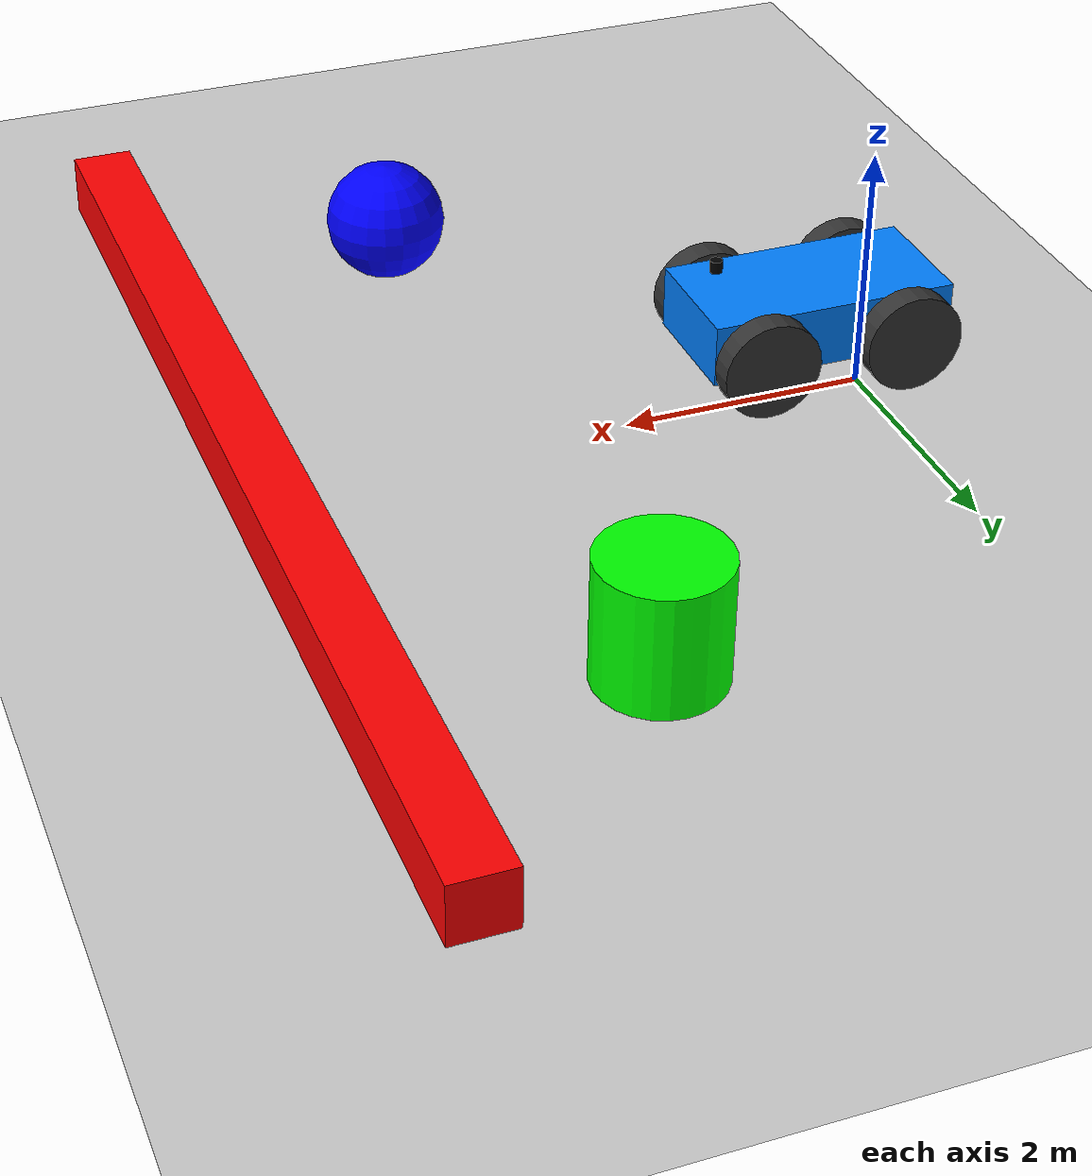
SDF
<?xml version="1.0" ?>
<sdf version="1.8">
    <world name="car_world">
        <physics name="1ms" type="ignored">
            <max_step_size>0.001</max_step_size>
            <real_time_factor>1.0</real_time_factor>
        </physics>
        <plugin filename="gz-sim-physics-system" name="gz::sim::systems::Physics"/>
        <plugin filename="gz-sim-user-commands-system" name="gz::sim::systems::UserCommands"/>
        <plugin filename="gz-sim-scene-broadcaster-system" name="gz::sim::systems::SceneBroadcaster"/>

        <plugin filename="gz-sim-sensors-system" name="gz::sim::systems::Sensors">
            <render_engine>ogre2</render_engine>
        </plugin>

        <light type="directional" name="sun">
            <cast_shadows>true</cast_shadows>
            <pose>0 0 10 0 0 0</pose>
            <diffuse>0.8 0.8 0.8 1</diffuse>
            <specular>0.2 0.2 0.2 1</specular>
            <direction>-0.5 0.1 -0.9</direction>
        </light>

        <model name="ground_plane">
            <static>true</static>
            <link name="link">
                <collision name="collision">
                    <geometry>
                        <plane>
                            <normal>0 0 1</normal>
                            <size>100 100</size>
                        </plane>
                    </geometry>
                </collision>
                <visual name="visual">
                    <geometry>
                        <plane>
                            <normal>0 0 1</normal>
                            <size>100 100</size>
                        </plane>
                    </geometry>
                    <material>
                        <ambient>0.8 0.8 0.8 1</ambient>
                        <diffuse>0.8 0.8 0.8 1</diffuse>
                        <specular>0.8 0.8 0.8 1</specular>
                    </material>
                </visual>
            </link>
        </model>

        <model name="red_wall">
    <static>true</static>
    <pose>5 0 0.25 0 0 0</pose> <link name="box_link">
        <collision name="collision">
            <geometry>
                <box>
                    <size>0.5 10.0 1</size> </box>
            </geometry>
        </collision>
        <visual name="visual">
            <geometry>
                <box>
                    <size>0.5 10.0 0.5</size>
                </box>
            </geometry>
            <material>
                <ambient>1 0 0 1</ambient>
                <diffuse>1 0 0 1</diffuse>
                <specular>0.1 0.1 0.1 1</specular>
            </material>
        </visual>
    </link>
</model>

        <model name="cylinder_obstacle">
            <pose>3 3 0.5 0 0 0</pose>
            <link name="link">
                <collision name="col"><geometry><cylinder><radius>0.5</radius><length>1.0</length></cylinder></geometry></collision>
                <visual name="vis"><geometry><cylinder><radius>0.5</radius><length>1.0</length></cylinder></geometry>
                    <material><ambient>0 1 0 1</ambient><diffuse>0 1 0 1</diffuse></material>
                </visual>
            </link>
        </model>

        <model name="sphere_obstacle">
            <pose>3 -3 0.5 0 0 0</pose>
            <link name="link">
                <collision name="col"><geometry><sphere><radius>0.5</radius></sphere></geometry></collision>
                <visual name="vis"><geometry><sphere><radius>0.5</radius></sphere></geometry>
                    <material><ambient>0 0 1 1</ambient><diffuse>0 0 1 1</diffuse></material>
                </visual>
            </link>
        </model>

        <model name='four_wheeled_robot' canonical_link='chassis'>
            <pose>0 0 0.4 0 0 0</pose>

            <link name='chassis'>
                <pose relative_to='__model__'>0.5 0 0.4 0 0 0</pose>
                <inertial>
                    <mass>1.14395</mass>
                    <inertia>
                        <ixx>0.095329</ixx>
                        <ixy>0</ixy>
                        <ixz>0</ixz>
                        <iyy>0.381317</iyy>
                        <iyz>0</iyz>
                        <izz>0.476646</izz>
                    </inertia>
                </inertial>
                <visual name='visual'>
                    <geometry>
                        <box>
                            <size>2.0 1.0 0.5</size>
                        </box>
                    </geometry>
                    <material>
                        <ambient>0.0 0.5 1.0 1</ambient>
                        <diffuse>0.0 0.5 1.0 1</diffuse>
                    </material>
                </visual>
                <collision name='collision'>
                    <geometry>
                        <box>
                            <size>2.0 1.0 0.5</size>
                        </box>
                    </geometry>
                </collision>
            </link>

            <link name='left_front_wheel'>
                <pose relative_to="chassis">0.6 0.6 -0.1 -1.5707 0 0</pose>
                <inertial>
                    <mass>1</mass>
                    <inertia>
                        <ixx>0.043333</ixx>
                        <ixy>0</ixy>
                        <ixz>0</ixz>
                        <iyy>0.043333</iyy>
                        <iyz>0</iyz>
                        <izz>0.08</izz>
                    </inertia>
                </inertial>
                <visual name='visual'>
                    <geometry><cylinder><radius>0.4</radius><length>0.2</length></cylinder></geometry>
                    <material><ambient>0.2 0.2 0.2 1</ambient><diffuse>0.2 0.2 0.2 1</diffuse></material>
                </visual>
                <collision name='collision'>
                    <geometry><cylinder><radius>0.4</radius><length>0.2</length></cylinder></geometry>
                </collision>
            </link>

            <link name='right_front_wheel'>
                <pose relative_to="chassis">0.6 -0.6 -0.1 -1.5707 0 0</pose>
                <inertial>
                    <mass>1</mass>
                    <inertia>
                        <ixx>0.043333</ixx><ixy>0</ixy><ixz>0</ixz><iyy>0.043333</iyy><iyz>0</iyz><izz>0.08</izz>
                    </inertia>
                </inertial>
                <visual name='visual'>
                    <geometry><cylinder><radius>0.4</radius><length>0.2</length></cylinder></geometry>
                    <material><ambient>0.2 0.2 0.2 1</ambient><diffuse>0.2 0.2 0.2 1</diffuse></material>
                </visual>
                <collision name='collision'>
                    <geometry><cylinder><radius>0.4</radius><length>0.2</length></cylinder></geometry>
                </collision>
            </link>

            <link name='left_rear_wheel'>
                <pose relative_to="chassis">-0.6 0.6 -0.1 -1.5707 0 0</pose>
                <inertial>
                    <mass>1</mass>
                    <inertia>
                        <ixx>0.043333</ixx><ixy>0</ixy><ixz>0</ixz><iyy>0.043333</iyy><iyz>0</iyz><izz>0.08</izz>
                    </inertia>
                </inertial>
                <visual name='visual'>
                    <geometry><cylinder><radius>0.4</radius><length>0.2</length></cylinder></geometry>
                    <material><ambient>0.2 0.2 0.2 1</ambient><diffuse>0.2 0.2 0.2 1</diffuse></material>
                </visual>
                <collision name='collision'>
                    <geometry><cylinder><radius>0.4</radius><length>0.2</length></cylinder></geometry>
                </collision>
            </link>

            <link name='right_rear_wheel'>
                <pose relative_to="chassis">-0.6 -0.6 -0.1 -1.5707 0 0</pose>
                <inertial>
                    <mass>1</mass>
                    <inertia>
                        <ixx>0.043333</ixx><ixy>0</ixy><ixz>0</ixz><iyy>0.043333</iyy><iyz>0</iyz><izz>0.08</izz>
                    </inertia>
                </inertial>
                <visual name='visual'>
                    <geometry><cylinder><radius>0.4</radius><length>0.2</length></cylinder></geometry>
                    <material><ambient>0.2 0.2 0.2 1</ambient><diffuse>0.2 0.2 0.2 1</diffuse></material>
                </visual>
                <collision name='collision'>
                    <geometry><cylinder><radius>0.4</radius><length>0.2</length></cylinder></geometry>
                </collision>
            </link>

            <joint name='left_front_wheel_joint' type='revolute'>
                <parent>chassis</parent>
                <child>left_front_wheel</child>
                <axis>
                    <xyz>0 0 1</xyz>
                    <limit><lower>-1.79769e+308</lower><upper>1.79769e+308</upper></limit>
                </axis>
            </joint>

            <joint name='right_front_wheel_joint' type='revolute'>
                <parent>chassis</parent>
                <child>right_front_wheel</child>
                <axis>
                    <xyz>0 0 1</xyz>
                    <limit><lower>-1.79769e+308</lower><upper>1.79769e+308</upper></limit>
                </axis>
            </joint>

            <joint name='left_rear_wheel_joint' type='revolute'>
                <parent>chassis</parent>
                <child>left_rear_wheel</child>
                <axis>
                    <xyz>0 0 1</xyz>
                    <limit><lower>-1.79769e+308</lower><upper>1.79769e+308</upper></limit>
                </axis>
            </joint>

            <joint name='right_rear_wheel_joint' type='revolute'>
                <parent>chassis</parent>
                <child>right_rear_wheel</child>
                <axis>
                    <xyz>0 0 1</xyz>
                    <limit><lower>-1.79769e+308</lower><upper>1.79769e+308</upper></limit>
                </axis>
            </joint>

            <link name='lidar_link'>
                <pose relative_to='chassis'>0.8 0 0.5 0 0 0</pose>
                <inertial>
                    <mass>0.1</mass>
                    <inertia>
                        <ixx>0.000166667</ixx><iyy>0.000166667</iyy><izz>0.000166667</izz>
                    </inertia>
                </inertial>
                <visual name='visual'>
                    <geometry><cylinder><radius>0.05</radius><length>0.1</length></cylinder></geometry>
                    <material><ambient>0 0 0 1</ambient><diffuse>0 0 0 1</diffuse></material>
                </visual>
                <sensor name='gpu_lidar' type='gpu_lidar'>
                    <topic>lidar</topic>
                    <update_rate>10</update_rate>
                    <lidar>
                        <scan>
                            <horizontal>
                                <samples>640</samples>
                                <resolution>1</resolution>
                                <min_angle>-1.396263</min_angle>
                                <max_angle>1.396263</max_angle>
                            </horizontal>
                        </scan>
                        <range>
                            <min>0.08</min>
                            <max>10.0</max>
                        </range>
                    </lidar>
                    <visualize>true</visualize>
                </sensor>
            </link>

            <joint name='lidar_joint' type='fixed'>
                <parent>chassis</parent>
                <child>lidar_link</child>
            </joint>

            <plugin filename="gz-sim-diff-drive-system" name="gz::sim::systems::DiffDrive">
                <left_joint>left_front_wheel_joint</left_joint>
                <left_joint>left_rear_wheel_joint</left_joint>
                <right_joint>right_front_wheel_joint</right_joint>
                <right_joint>right_rear_wheel_joint</right_joint>
                <wheel_separation>1.2</wheel_separation>
                <wheel_radius>0.4</wheel_radius>
                <odom_publish_frequency>1</odom_publish_frequency>
                <topic>cmd_vel</topic>
            </plugin>
        </model>
    </world>
</sdf>
